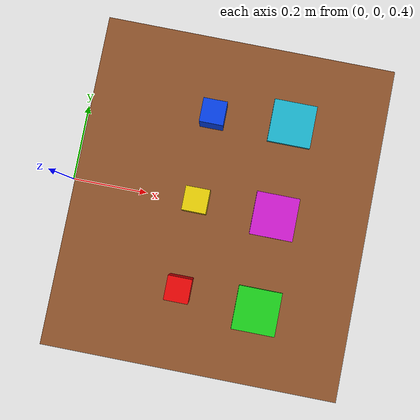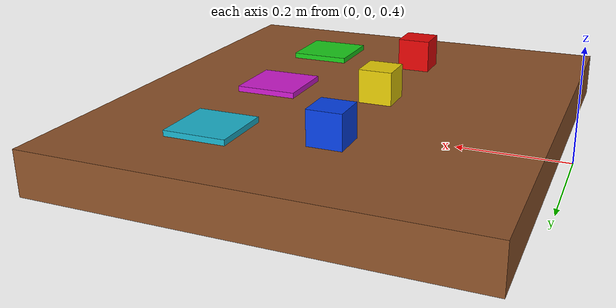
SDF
<?xml version="1.0" ?>
<sdf version="1.7">
  <world name="ur3_llm_task_world">
    <physics name="default_physics" type="ode"><max_step_size>0.001</max_step_size><real_time_factor>1</real_time_factor></physics>
    <plugin filename="gz-sim-physics-system" name="gz::sim::systems::Physics"/>
    <plugin filename="gz-sim-user-commands-system" name="gz::sim::systems::UserCommands"/>
    <plugin filename="gz-sim-scene-broadcaster-system" name="gz::sim::systems::SceneBroadcaster"/>
    <light type="directional" name="sun"><pose>0 0 4 0 0 0</pose><diffuse>0.8 0.8 0.8 1</diffuse><direction>-0.4 0.3 -1</direction></light>
    <model name="worktable"><static>true</static><pose>0.40 0 0.43 0 0 0</pose><link name="table_link">
      <collision name="collision"><geometry><box><size>0.75 0.85 0.08</size></box></geometry></collision>
      <visual name="visual"><geometry><box><size>0.75 0.85 0.08</size></box></geometry><material><ambient>0.35 0.22 0.12 1</ambient><diffuse>0.55 0.32 0.16 1</diffuse></material></visual>
    </link></model>
    <model name="red_cube"><static>false</static><pose>0.34 -0.22 0.50 0 0 0</pose><link name="link"><inertial><mass>0.10</mass><inertia><ixx>0.00006</ixx><iyy>0.00006</iyy><izz>0.00006</izz><ixy>0</ixy><ixz>0</ixz><iyz>0</iyz></inertia></inertial><collision name="c"><geometry><box><size>0.06 0.06 0.06</size></box></geometry><surface><friction><ode><mu>3.0</mu><mu2>3.0</mu2></ode></friction></surface></collision><visual name="v"><geometry><box><size>0.06 0.06 0.06</size></box></geometry><material><ambient>0.8 0.02 0.02 1</ambient><diffuse>0.9 0.02 0.02 1</diffuse></material></visual></link></model>
    <model name="yellow_cube"><static>false</static><pose>0.34 0 0.50 0 0 0</pose><link name="link"><inertial><mass>0.10</mass><inertia><ixx>0.00006</ixx><iyy>0.00006</iyy><izz>0.00006</izz><ixy>0</ixy><ixz>0</ixz><iyz>0</iyz></inertia></inertial><collision name="c"><geometry><box><size>0.06 0.06 0.06</size></box></geometry><surface><friction><ode><mu>3.0</mu><mu2>3.0</mu2></ode></friction></surface></collision><visual name="v"><geometry><box><size>0.06 0.06 0.06</size></box></geometry><material><ambient>0.8 0.7 0.02 1</ambient><diffuse>0.9 0.8 0.02 1</diffuse></material></visual></link></model>
    <model name="blue_cube"><static>false</static><pose>0.34 0.22 0.50 0 0 0</pose><link name="link"><inertial><mass>0.10</mass><inertia><ixx>0.00006</ixx><iyy>0.00006</iyy><izz>0.00006</izz><ixy>0</ixy><ixz>0</ixz><iyz>0</iyz></inertia></inertial><collision name="c"><geometry><box><size>0.06 0.06 0.06</size></box></geometry><surface><friction><ode><mu>3.0</mu><mu2>3.0</mu2></ode></friction></surface></collision><visual name="v"><geometry><box><size>0.06 0.06 0.06</size></box></geometry><material><ambient>0.02 0.18 0.8 1</ambient><diffuse>0.02 0.25 0.9 1</diffuse></material></visual></link></model>
    <model name="zone_a"><static>true</static><pose>0.54 -0.24 0.475 0 0 0</pose><link name="link"><visual name="v"><geometry><box><size>0.11 0.11 0.01</size></box></geometry><material><ambient>0.1 0.8 0.1 1</ambient><diffuse>0.1 0.8 0.1 1</diffuse></material></visual></link></model>
    <model name="zone_b"><static>true</static><pose>0.54 0 0.475 0 0 0</pose><link name="link"><visual name="v"><geometry><box><size>0.11 0.11 0.01</size></box></geometry><material><ambient>0.8 0.1 0.8 1</ambient><diffuse>0.8 0.1 0.8 1</diffuse></material></visual></link></model>
    <model name="zone_c"><static>true</static><pose>0.54 0.24 0.475 0 0 0</pose><link name="link"><visual name="v"><geometry><box><size>0.11 0.11 0.01</size></box></geometry><material><ambient>0.1 0.7 0.8 1</ambient><diffuse>0.1 0.7 0.8 1</diffuse></material></visual></link></model>
  </world>
</sdf>
